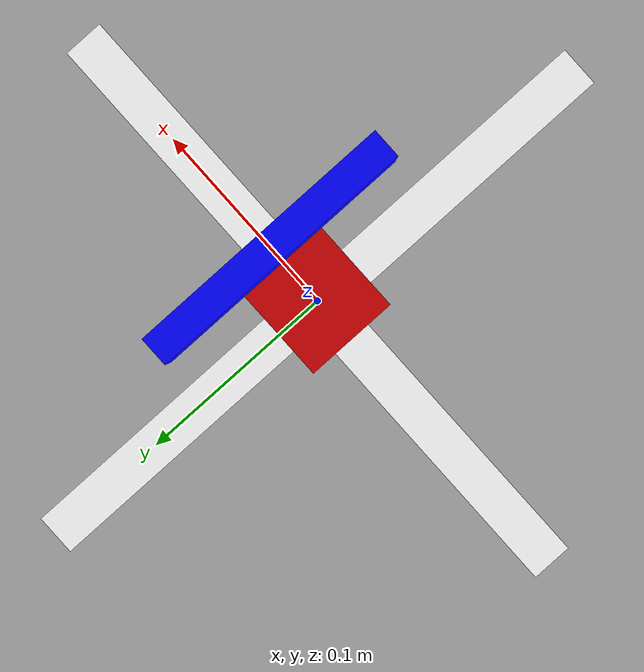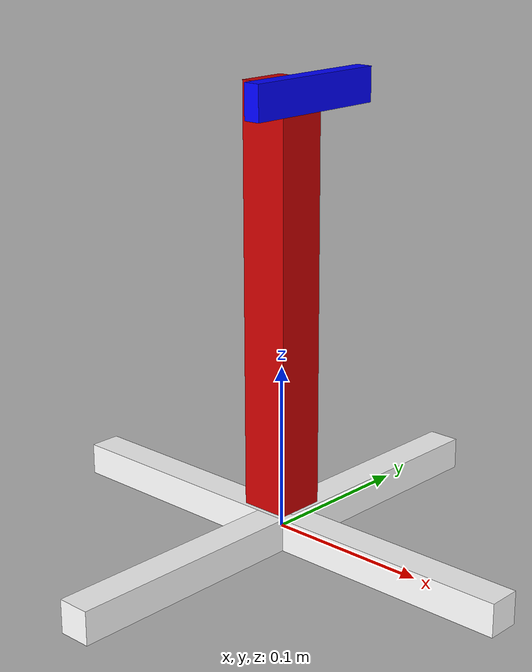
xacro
<?xml version="1.0"?>
<robot name="coldeyes_frame" xmlns:xacro="http://ros.org/wiki/xacro">
  <xacro:include filename="$(find coldeyes_description)/urdf/common_properties.urdf.xacro"/>
  <link name="base_link">
    <visual>
      <geometry>
        <box size=".03 .03 .25"/>
      </geometry>
      <origin rpy="0 0 0" xyz="0 0 .140"/>
      <material name="red">
        <color rgba=".8 0 0 1"/>
      </material>
    </visual>
  </link>

  <link name="camera_front">
    <visual>
      <geometry>
        <box size=".09 .02 .01 "/>
      </geometry>
      <origin rpy="0 0 0" xyz="0 0 0"/>
      <material name="blue">
        <color rgba="0 0 1 1"/>
      </material>
    </visual>
  </link>
  <joint name="base_to_camera_front" type="fixed">
    <parent link="base_link"/>
    <child link="camera_front"/>
    <origin rpy="-1.57075 0 -1.57075" xyz=".0205 0 0.26"/>
  </joint>

  <link name="x_leg">
    <visual>
      <geometry>
        <box size=".02 .02 .32"/>
      </geometry>
      <origin rpy="0 1.57075 1.57075" xyz="0 0 0"/>
      <material name="white">
        <color rgba="1 1 1 1"/>
      </material>
    </visual>
  </link>

  <joint name="base_to_right_leg" type="fixed">
    <parent link="base_link"/>
    <child link="x_leg"/>
    <origin xyz="0 0 0"/>
  </joint>

  <link name="y_leg">
    <visual>
      <geometry>
        <box size=".02 .02 .32"/>
      </geometry>
      <origin rpy="1.57075 1.57075 1.57075" xyz="0 0 0"/>
      <material name="white"/>
    </visual>
  </link>

  <joint name="base_to_left_leg" type="fixed">
    <parent link="base_link"/>
    <child link="y_leg"/>
    <origin xyz="0 0 0"/>
  </joint>
</robot>
